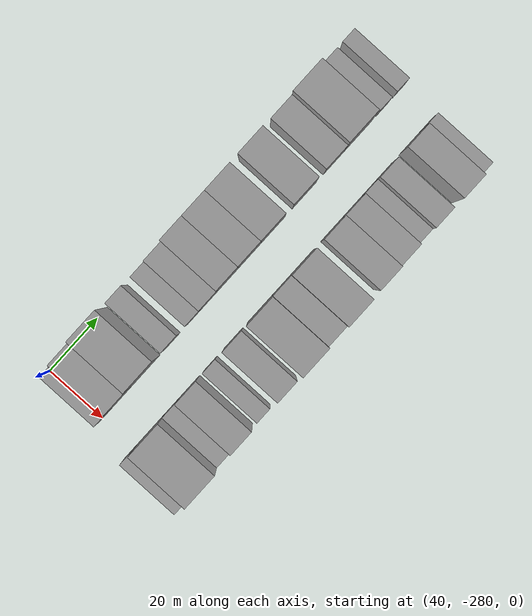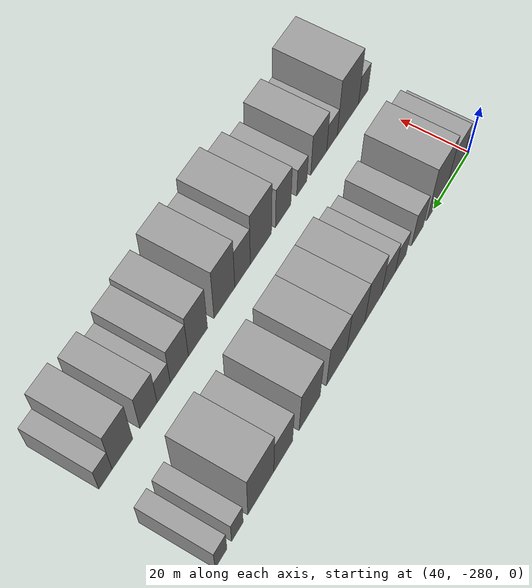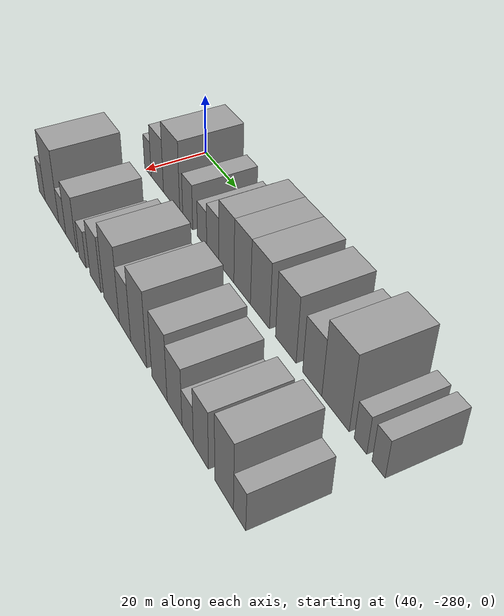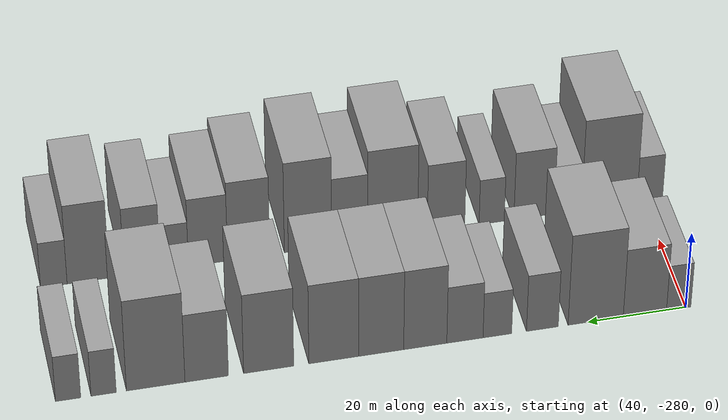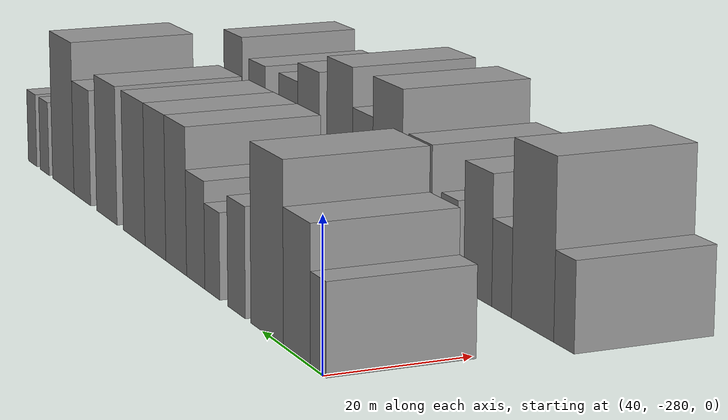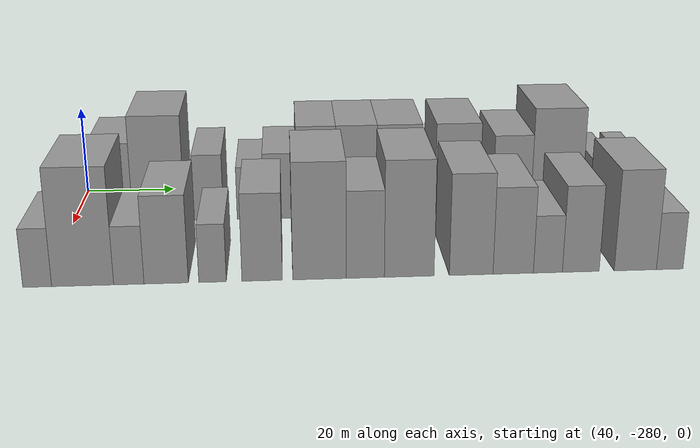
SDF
<sdf version="1.6">
 <world name="default">
  <model name="building_1">
   <static>1</static>
   <pose>50.0000 -278.5065 0 0.000000 0.000000 0.000000</pose>
   <link name="link">
    <pose>0 0 6.00 0 0 0</pose>
    <collision name="collision"><geometry><box><size>20.0000 4.9871 12.0000</size></box></geometry></collision>
    <visual name="visual">
     <cast_shadows>0</cast_shadows>
     <geometry><box><size>20.0000 4.9871 12.0000</size></box></geometry>
     <material>
      <script>
       <uri>model://grey_wall/materials/scripts</uri>
       <uri>model://grey_wall/materials/textures</uri>
       <name>vrc/grey_wall</name>
      </script>
     </material>
    </visual>
   </link>
  </model>
  <model name="building_2">
   <static>1</static>
   <pose>50.0000 -271.5844 0 0.000000 0.000000 0.000000</pose>
   <link name="link">
    <pose>0 0 9.00 0 0 0</pose>
    <collision name="collision"><geometry><box><size>20.0000 8.8571 18.0000</size></box></geometry></collision>
    <visual name="visual">
     <cast_shadows>0</cast_shadows>
     <geometry><box><size>20.0000 8.8571 18.0000</size></box></geometry>
     <material>
      <script>
       <uri>model://grey_wall/materials/scripts</uri>
       <uri>model://grey_wall/materials/textures</uri>
       <name>vrc/grey_wall</name>
      </script>
     </material>
    </visual>
   </link>
  </model>
  <model name="building_3">
   <static>1</static>
   <pose>50.0000 -261.5366 0 0.000000 0.000000 0.000000</pose>
   <link name="link">
    <pose>0 0 12.00 0 0 0</pose>
    <collision name="collision"><geometry><box><size>20.0000 11.2384 24.0000</size></box></geometry></collision>
    <visual name="visual">
     <cast_shadows>0</cast_shadows>
     <geometry><box><size>20.0000 11.2384 24.0000</size></box></geometry>
     <material>
      <script>
       <uri>model://grey_wall/materials/scripts</uri>
       <uri>model://grey_wall/materials/textures</uri>
       <name>vrc/grey_wall</name>
      </script>
     </material>
    </visual>
   </link>
  </model>
  <model name="building_4">
   <static>1</static>
   <pose>50.0000 -250.6917 0 0.000000 0.000000 0.000000</pose>
   <link name="link">
    <pose>0 0 7.50 0 0 0</pose>
    <collision name="collision"><geometry><box><size>20.0000 6.4514 15.0000</size></box></geometry></collision>
    <visual name="visual">
     <cast_shadows>0</cast_shadows>
     <geometry><box><size>20.0000 6.4514 15.0000</size></box></geometry>
     <material>
      <script>
       <uri>model://grey_wall/materials/scripts</uri>
       <uri>model://grey_wall/materials/textures</uri>
       <name>vrc/grey_wall</name>
      </script>
     </material>
    </visual>
   </link>
  </model>
  <model name="building_5">
   <static>1</static>
   <pose>50.0000 -241.5731 0 0.000000 0.000000 0.000000</pose>
   <link name="link">
    <pose>0 0 6.00 0 0 0</pose>
    <collision name="collision"><geometry><box><size>20.0000 5.7857 12.0000</size></box></geometry></collision>
    <visual name="visual">
     <cast_shadows>0</cast_shadows>
     <geometry><box><size>20.0000 5.7857 12.0000</size></box></geometry>
     <material>
      <script>
       <uri>model://grey_wall/materials/scripts</uri>
       <uri>model://grey_wall/materials/textures</uri>
       <name>vrc/grey_wall</name>
      </script>
     </material>
    </visual>
   </link>
  </model>
  <model name="building_6">
   <static>1</static>
   <pose>50.0000 -235.0290 0 0.000000 0.000000 0.000000</pose>
   <link name="link">
    <pose>0 0 7.50 0 0 0</pose>
    <collision name="collision"><geometry><box><size>20.0000 7.3026 15.0000</size></box></geometry></collision>
    <visual name="visual">
     <cast_shadows>0</cast_shadows>
     <geometry><box><size>20.0000 7.3026 15.0000</size></box></geometry>
     <material>
      <script>
       <uri>model://grey_wall/materials/scripts</uri>
       <uri>model://grey_wall/materials/textures</uri>
       <name>vrc/grey_wall</name>
      </script>
     </material>
    </visual>
   </link>
  </model>
  <model name="building_7">
   <static>1</static>
   <pose>50.0000 -227.0505 0 0.000000 0.000000 0.000000</pose>
   <link name="link">
    <pose>0 0 10.50 0 0 0</pose>
    <collision name="collision"><geometry><box><size>20.0000 8.6544 21.0000</size></box></geometry></collision>
    <visual name="visual">
     <cast_shadows>0</cast_shadows>
     <geometry><box><size>20.0000 8.6544 21.0000</size></box></geometry>
     <material>
      <script>
       <uri>model://grey_wall/materials/scripts</uri>
       <uri>model://grey_wall/materials/textures</uri>
       <name>vrc/grey_wall</name>
      </script>
     </material>
    </visual>
   </link>
  </model>
  <model name="building_8">
   <static>1</static>
   <pose>50.0000 -218.1994 0 0.000000 0.000000 0.000000</pose>
   <link name="link">
    <pose>0 0 10.50 0 0 0</pose>
    <collision name="collision"><geometry><box><size>20.0000 9.0477 21.0000</size></box></geometry></collision>
    <visual name="visual">
     <cast_shadows>0</cast_shadows>
     <geometry><box><size>20.0000 9.0477 21.0000</size></box></geometry>
     <material>
      <script>
       <uri>model://grey_wall/materials/scripts</uri>
       <uri>model://grey_wall/materials/textures</uri>
       <name>vrc/grey_wall</name>
      </script>
     </material>
    </visual>
   </link>
  </model>
  <model name="building_9">
   <static>1</static>
   <pose>50.0000 -208.7246 0 0.000000 0.000000 0.000000</pose>
   <link name="link">
    <pose>0 0 10.50 0 0 0</pose>
    <collision name="collision"><geometry><box><size>20.0000 9.9019 21.0000</size></box></geometry></collision>
    <visual name="visual">
     <cast_shadows>0</cast_shadows>
     <geometry><box><size>20.0000 9.9019 21.0000</size></box></geometry>
     <material>
      <script>
       <uri>model://grey_wall/materials/scripts</uri>
       <uri>model://grey_wall/materials/textures</uri>
       <name>vrc/grey_wall</name>
      </script>
     </material>
    </visual>
   </link>
  </model>
  <model name="building_10">
   <static>1</static>
   <pose>50.0000 -195.8048 0 0.000000 0.000000 0.000000</pose>
   <link name="link">
    <pose>0 0 10.50 0 0 0</pose>
    <collision name="collision"><geometry><box><size>20.0000 9.9379 21.0000</size></box></geometry></collision>
    <visual name="visual">
     <cast_shadows>0</cast_shadows>
     <geometry><box><size>20.0000 9.9379 21.0000</size></box></geometry>
     <material>
      <script>
       <uri>model://grey_wall/materials/scripts</uri>
       <uri>model://grey_wall/materials/textures</uri>
       <name>vrc/grey_wall</name>
      </script>
     </material>
    </visual>
   </link>
  </model>
  <model name="building_11">
   <static>1</static>
   <pose>50.0000 -183.5506 0 0.000000 0.000000 0.000000</pose>
   <link name="link">
    <pose>0 0 9.00 0 0 0</pose>
    <collision name="collision"><geometry><box><size>20.0000 8.5705 18.0000</size></box></geometry></collision>
    <visual name="visual">
     <cast_shadows>0</cast_shadows>
     <geometry><box><size>20.0000 8.5705 18.0000</size></box></geometry>
     <material>
      <script>
       <uri>model://grey_wall/materials/scripts</uri>
       <uri>model://grey_wall/materials/textures</uri>
       <name>vrc/grey_wall</name>
      </script>
     </material>
    </visual>
   </link>
  </model>
  <model name="building_12">
   <static>1</static>
   <pose>50.0000 -173.5130 0 0.000000 0.000000 0.000000</pose>
   <link name="link">
    <pose>0 0 12.00 0 0 0</pose>
    <collision name="collision"><geometry><box><size>20.0000 11.5047 24.0000</size></box></geometry></collision>
    <visual name="visual">
     <cast_shadows>0</cast_shadows>
     <geometry><box><size>20.0000 11.5047 24.0000</size></box></geometry>
     <material>
      <script>
       <uri>model://grey_wall/materials/scripts</uri>
       <uri>model://grey_wall/materials/textures</uri>
       <name>vrc/grey_wall</name>
      </script>
     </material>
    </visual>
   </link>
  </model>
  <model name="building_13">
   <static>1</static>
   <pose>50.0000 -163.2944 0 0.000000 0.000000 0.000000</pose>
   <link name="link">
    <pose>0 0 6.00 0 0 0</pose>
    <collision name="collision"><geometry><box><size>20.0000 4.9323 12.0000</size></box></geometry></collision>
    <visual name="visual">
     <cast_shadows>0</cast_shadows>
     <geometry><box><size>20.0000 4.9323 12.0000</size></box></geometry>
     <material>
      <script>
       <uri>model://grey_wall/materials/scripts</uri>
       <uri>model://grey_wall/materials/textures</uri>
       <name>vrc/grey_wall</name>
      </script>
     </material>
    </visual>
   </link>
  </model>
  <model name="building_14">
   <static>1</static>
   <pose>50.0000 -156.3599 0 0.000000 0.000000 0.000000</pose>
   <link name="link">
    <pose>0 0 6.00 0 0 0</pose>
    <collision name="collision"><geometry><box><size>20.0000 4.9368 12.0000</size></box></geometry></collision>
    <visual name="visual">
     <cast_shadows>0</cast_shadows>
     <geometry><box><size>20.0000 4.9368 12.0000</size></box></geometry>
     <material>
      <script>
       <uri>model://grey_wall/materials/scripts</uri>
       <uri>model://grey_wall/materials/textures</uri>
       <name>vrc/grey_wall</name>
      </script>
     </material>
    </visual>
   </link>
  </model>
  <model name="building_59">
   <static>1</static>
   <pose>82.0000 -281.2946 0 0.000000 0.000000 0.000000</pose>
   <link name="link">
    <pose>0 0 6.00 0 0 0</pose>
    <collision name="collision"><geometry><box><size>20.0000 5.4108 12.0000</size></box></geometry></collision>
    <visual name="visual">
     <cast_shadows>0</cast_shadows>
     <geometry><box><size>20.0000 5.4108 12.0000</size></box></geometry>
     <material>
      <script>
       <uri>model://grey_wall/materials/scripts</uri>
       <uri>model://grey_wall/materials/textures</uri>
       <name>vrc/grey_wall</name>
      </script>
     </material>
    </visual>
   </link>
  </model>
  <model name="building_60">
   <static>1</static>
   <pose>82.0000 -272.7439 0 0.000000 0.000000 0.000000</pose>
   <link name="link">
    <pose>0 0 12.00 0 0 0</pose>
    <collision name="collision"><geometry><box><size>20.0000 11.6908 24.0000</size></box></geometry></collision>
    <visual name="visual">
     <cast_shadows>0</cast_shadows>
     <geometry><box><size>20.0000 11.6908 24.0000</size></box></geometry>
     <material>
      <script>
       <uri>model://grey_wall/materials/scripts</uri>
       <uri>model://grey_wall/materials/textures</uri>
       <name>vrc/grey_wall</name>
      </script>
     </material>
    </visual>
   </link>
  </model>
  <model name="building_61">
   <static>1</static>
   <pose>82.0000 -264.0262 0 0.000000 0.000000 0.000000</pose>
   <link name="link">
    <pose>0 0 6.00 0 0 0</pose>
    <collision name="collision"><geometry><box><size>20.0000 5.7445 12.0000</size></box></geometry></collision>
    <visual name="visual">
     <cast_shadows>0</cast_shadows>
     <geometry><box><size>20.0000 5.7445 12.0000</size></box></geometry>
     <material>
      <script>
       <uri>model://grey_wall/materials/scripts</uri>
       <uri>model://grey_wall/materials/textures</uri>
       <name>vrc/grey_wall</name>
      </script>
     </material>
    </visual>
   </link>
  </model>
  <model name="building_62">
   <static>1</static>
   <pose>82.0000 -256.9357 0 0.000000 0.000000 0.000000</pose>
   <link name="link">
    <pose>0 0 9.00 0 0 0</pose>
    <collision name="collision"><geometry><box><size>20.0000 8.4366 18.0000</size></box></geometry></collision>
    <visual name="visual">
     <cast_shadows>0</cast_shadows>
     <geometry><box><size>20.0000 8.4366 18.0000</size></box></geometry>
     <material>
      <script>
       <uri>model://grey_wall/materials/scripts</uri>
       <uri>model://grey_wall/materials/textures</uri>
       <name>vrc/grey_wall</name>
      </script>
     </material>
    </visual>
   </link>
  </model>
  <model name="building_63">
   <static>1</static>
   <pose>82.0000 -248.0878 0 0.000000 0.000000 0.000000</pose>
   <link name="link">
    <pose>0 0 6.00 0 0 0</pose>
    <collision name="collision"><geometry><box><size>20.0000 5.2592 12.0000</size></box></geometry></collision>
    <visual name="visual">
     <cast_shadows>0</cast_shadows>
     <geometry><box><size>20.0000 5.2592 12.0000</size></box></geometry>
     <material>
      <script>
       <uri>model://grey_wall/materials/scripts</uri>
       <uri>model://grey_wall/materials/textures</uri>
       <name>vrc/grey_wall</name>
      </script>
     </material>
    </visual>
   </link>
  </model>
  <model name="building_64">
   <static>1</static>
   <pose>82.0000 -238.5676 0 0.000000 0.000000 0.000000</pose>
   <link name="link">
    <pose>0 0 9.00 0 0 0</pose>
    <collision name="collision"><geometry><box><size>20.0000 7.7812 18.0000</size></box></geometry></collision>
    <visual name="visual">
     <cast_shadows>0</cast_shadows>
     <geometry><box><size>20.0000 7.7812 18.0000</size></box></geometry>
     <material>
      <script>
       <uri>model://grey_wall/materials/scripts</uri>
       <uri>model://grey_wall/materials/textures</uri>
       <name>vrc/grey_wall</name>
      </script>
     </material>
    </visual>
   </link>
  </model>
  <model name="building_65">
   <static>1</static>
   <pose>82.0000 -227.4914 0 0.000000 0.000000 0.000000</pose>
   <link name="link">
    <pose>0 0 12.00 0 0 0</pose>
    <collision name="collision"><geometry><box><size>20.0000 10.3712 24.0000</size></box></geometry></collision>
    <visual name="visual">
     <cast_shadows>0</cast_shadows>
     <geometry><box><size>20.0000 10.3712 24.0000</size></box></geometry>
     <material>
      <script>
       <uri>model://grey_wall/materials/scripts</uri>
       <uri>model://grey_wall/materials/textures</uri>
       <name>vrc/grey_wall</name>
      </script>
     </material>
    </visual>
   </link>
  </model>
  <model name="building_66">
   <static>1</static>
   <pose>82.0000 -218.5998 0 0.000000 0.000000 0.000000</pose>
   <link name="link">
    <pose>0 0 9.00 0 0 0</pose>
    <collision name="collision"><geometry><box><size>20.0000 7.4120 18.0000</size></box></geometry></collision>
    <visual name="visual">
     <cast_shadows>0</cast_shadows>
     <geometry><box><size>20.0000 7.4120 18.0000</size></box></geometry>
     <material>
      <script>
       <uri>model://grey_wall/materials/scripts</uri>
       <uri>model://grey_wall/materials/textures</uri>
       <name>vrc/grey_wall</name>
      </script>
     </material>
    </visual>
   </link>
  </model>
  <model name="building_67">
   <static>1</static>
   <pose>82.0000 -210.0460 0 0.000000 0.000000 0.000000</pose>
   <link name="link">
    <pose>0 0 12.00 0 0 0</pose>
    <collision name="collision"><geometry><box><size>20.0000 9.6958 24.0000</size></box></geometry></collision>
    <visual name="visual">
     <cast_shadows>0</cast_shadows>
     <geometry><box><size>20.0000 9.6958 24.0000</size></box></geometry>
     <material>
      <script>
       <uri>model://grey_wall/materials/scripts</uri>
       <uri>model://grey_wall/materials/textures</uri>
       <name>vrc/grey_wall</name>
      </script>
     </material>
    </visual>
   </link>
  </model>
  <model name="building_68">
   <static>1</static>
   <pose>82.0000 -197.8975 0 0.000000 0.000000 0.000000</pose>
   <link name="link">
    <pose>0 0 10.50 0 0 0</pose>
    <collision name="collision"><geometry><box><size>20.0000 8.6012 21.0000</size></box></geometry></collision>
    <visual name="visual">
     <cast_shadows>0</cast_shadows>
     <geometry><box><size>20.0000 8.6012 21.0000</size></box></geometry>
     <material>
      <script>
       <uri>model://grey_wall/materials/scripts</uri>
       <uri>model://grey_wall/materials/textures</uri>
       <name>vrc/grey_wall</name>
      </script>
     </material>
    </visual>
   </link>
  </model>
  <model name="building_69">
   <static>1</static>
   <pose>82.0000 -189.6049 0 0.000000 0.000000 0.000000</pose>
   <link name="link">
    <pose>0 0 9.00 0 0 0</pose>
    <collision name="collision"><geometry><box><size>20.0000 7.9839 18.0000</size></box></geometry></collision>
    <visual name="visual">
     <cast_shadows>0</cast_shadows>
     <geometry><box><size>20.0000 7.9839 18.0000</size></box></geometry>
     <material>
      <script>
       <uri>model://grey_wall/materials/scripts</uri>
       <uri>model://grey_wall/materials/textures</uri>
       <name>vrc/grey_wall</name>
      </script>
     </material>
    </visual>
   </link>
  </model>
  <model name="building_70">
   <static>1</static>
   <pose>82.0000 -182.7330 0 0.000000 0.000000 0.000000</pose>
   <link name="link">
    <pose>0 0 6.00 0 0 0</pose>
    <collision name="collision"><geometry><box><size>20.0000 5.7600 12.0000</size></box></geometry></collision>
    <visual name="visual">
     <cast_shadows>0</cast_shadows>
     <geometry><box><size>20.0000 5.7600 12.0000</size></box></geometry>
     <material>
      <script>
       <uri>model://grey_wall/materials/scripts</uri>
       <uri>model://grey_wall/materials/textures</uri>
       <name>vrc/grey_wall</name>
      </script>
     </material>
    </visual>
   </link>
  </model>
  <model name="building_71">
   <static>1</static>
   <pose>82.0000 -176.1849 0 0.000000 0.000000 0.000000</pose>
   <link name="link">
    <pose>0 0 9.00 0 0 0</pose>
    <collision name="collision"><geometry><box><size>20.0000 7.3361 18.0000</size></box></geometry></collision>
    <visual name="visual">
     <cast_shadows>0</cast_shadows>
     <geometry><box><size>20.0000 7.3361 18.0000</size></box></geometry>
     <material>
      <script>
       <uri>model://grey_wall/materials/scripts</uri>
       <uri>model://grey_wall/materials/textures</uri>
       <name>vrc/grey_wall</name>
      </script>
     </material>
    </visual>
   </link>
  </model>
  <model name="building_72">
   <static>1</static>
   <pose>82.0000 -165.2779 0 0.000000 0.000000 0.000000</pose>
   <link name="link">
    <pose>0 0 10.50 0 0 0</pose>
    <collision name="collision"><geometry><box><size>20.0000 8.4780 21.0000</size></box></geometry></collision>
    <visual name="visual">
     <cast_shadows>0</cast_shadows>
     <geometry><box><size>20.0000 8.4780 21.0000</size></box></geometry>
     <material>
      <script>
       <uri>model://grey_wall/materials/scripts</uri>
       <uri>model://grey_wall/materials/textures</uri>
       <name>vrc/grey_wall</name>
      </script>
     </material>
    </visual>
   </link>
  </model>
  <model name="building_73">
   <static>1</static>
   <pose>82.0000 -158.3622 0 0.000000 0.000000 0.000000</pose>
   <link name="link">
    <pose>0 0 6.00 0 0 0</pose>
    <collision name="collision"><geometry><box><size>20.0000 5.3534 12.0000</size></box></geometry></collision>
    <visual name="visual">
     <cast_shadows>0</cast_shadows>
     <geometry><box><size>20.0000 5.3534 12.0000</size></box></geometry>
     <material>
      <script>
       <uri>model://grey_wall/materials/scripts</uri>
       <uri>model://grey_wall/materials/textures</uri>
       <name>vrc/grey_wall</name>
      </script>
     </material>
    </visual>
   </link>
  </model>
 </world>
</sdf>
